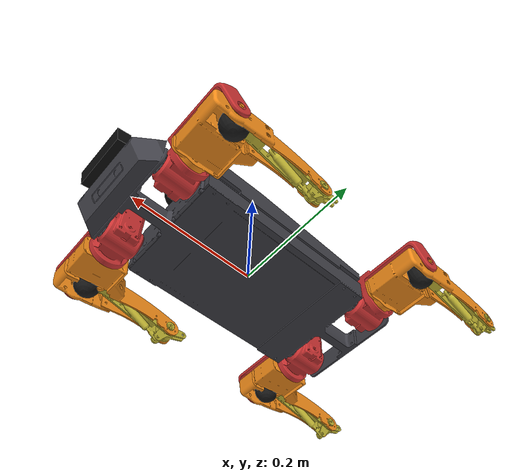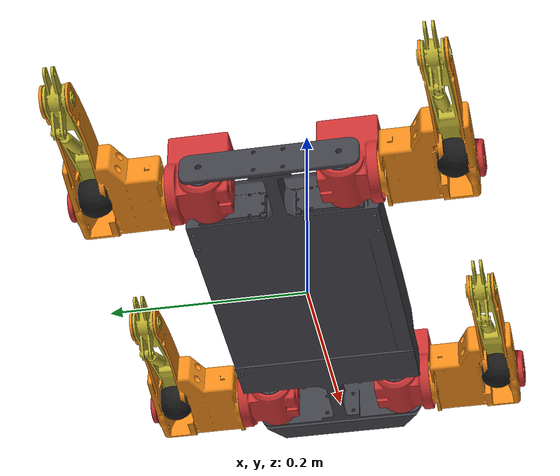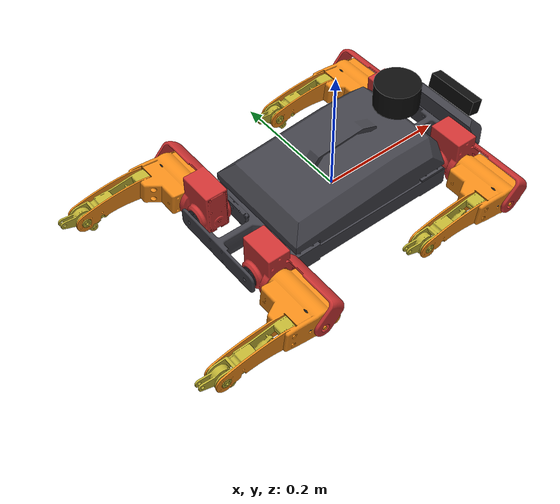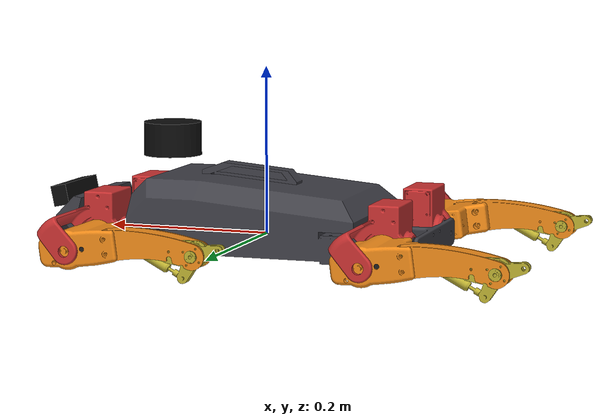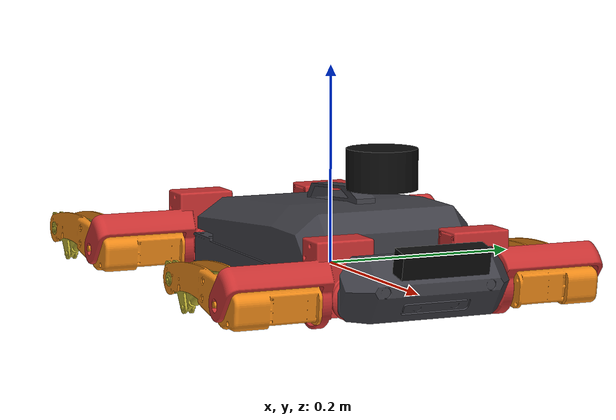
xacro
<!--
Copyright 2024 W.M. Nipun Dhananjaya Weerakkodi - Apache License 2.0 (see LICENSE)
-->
<?xml version="1.0"?>
<robot xmlns:xacro="http://www.ros.org/wiki/xacro" name="hyperdog">

  <xacro:arg name="sim" default="true"/>
  <xacro:arg name="use_lidar" default="true"/>
  <xacro:arg name="use_camera" default="true"/>
  <xacro:arg name="motors_file" default="$(find hyperdog_description)/config/bldc_motors.yaml"/>
  <xacro:arg name="controllers_file" default="$(find hyperdog_description)/config/controllers.yaml"/>
  <xacro:arg name="can_interface" default="can0"/>
  <!-- model variations (robustness testing / payloads) -->
  <xacro:arg name="payload_mass" default="0.0"/>
  <xacro:arg name="payload_x" default="0.0"/>
  <xacro:arg name="payload_y" default="0.0"/>
  <xacro:arg name="foot_mu" default="1.0"/>
  <xacro:arg name="imu_noise_scale" default="1.0"/>
  <!-- optional extra ros2_control parameter file (overrides, e.g. motor variations) -->
  <xacro:arg name="extra_controller_params" default=""/>

  <xacro:property name="motors_file" value="$(arg motors_file)"/>
  <xacro:property name="foot_mu" value="$(arg foot_mu)"/>
  <xacro:property name="imu_noise_scale" value="$(arg imu_noise_scale)"/>
  <xacro:include filename="$(find hyperdog_description)/urdf/common.xacro"/>
  <xacro:include filename="$(find hyperdog_description)/urdf/leg.xacro"/>
  <xacro:include filename="$(find hyperdog_description)/urdf/sensors.xacro"/>
  <xacro:include filename="$(find hyperdog_description)/urdf/ros2_control.xacro"/>

  <!-- ============================== body ============================== -->
  <link name="base_link">
    <visual>
      <geometry><mesh filename="file://$(find hyperdog_description)/meshes/body.stl" scale="0.001 0.001 0.001"/></geometry>
      <material name="body_grey"><color rgba="0.25 0.25 0.28 1"/></material>
    </visual>
    <collision name="base_collision">
      <origin xyz="0.018 0.0 0.033" rpy="0 0 0"/>
      <geometry><box size="0.42 0.18 0.10"/></geometry>
    </collision>
  </link>

  <joint name="inertial_joint" type="fixed">
    <parent link="base_link"/>
    <child link="inertial_link"/>
  </joint>
  <link name="inertial_link">
    <inertial>
      <origin xyz="0.0 0.0 0.01" rpy="0 0 0"/>
      <mass value="${body_mass}"/>
      <inertia ixx="0.0114" ixy="0" ixz="0" iyy="0.0549" iyz="0" izz="0.0610"/>
    </inertial>
  </link>

  <!-- optional payload (point mass) -->
  <xacro:if value="${$(arg payload_mass) > 0.0}">
    <joint name="payload_joint" type="fixed">
      <parent link="base_link"/>
      <child link="payload_link"/>
      <origin xyz="$(arg payload_x) $(arg payload_y) 0.08" rpy="0 0 0"/>
    </joint>
    <link name="payload_link">
      <inertial>
        <mass value="$(arg payload_mass)"/>
        <inertia ixx="0.001" ixy="0" ixz="0" iyy="0.001" iyz="0" izz="0.001"/>
      </inertial>
    </link>
  </xacro:if>

  <!-- ============================== legs ============================== -->
  <xacro:hyperdog_leg prefix="FR" front="1" left="-1"/>
  <xacro:hyperdog_leg prefix="FL" front="1" left="1"/>
  <xacro:hyperdog_leg prefix="BR" front="-1" left="-1"/>
  <xacro:hyperdog_leg prefix="BL" front="-1" left="1"/>

  <!-- ============================= sensors ============================ -->
  <xacro:hyperdog_imu/>
  <xacro:hyperdog_foot_contact prefix="FR"/>
  <xacro:hyperdog_foot_contact prefix="FL"/>
  <xacro:hyperdog_foot_contact prefix="BR"/>
  <xacro:hyperdog_foot_contact prefix="BL"/>
  <xacro:if value="$(arg use_lidar)">
    <xacro:hyperdog_lidar/>
  </xacro:if>
  <xacro:if value="$(arg use_camera)">
    <xacro:hyperdog_rgbd_camera/>
  </xacro:if>
  <xacro:hyperdog_ground_truth/>

  <!-- ========================== ros2_control ========================== -->
  <xacro:hyperdog_ros2_control sim="$(arg sim)" can_interface="$(arg can_interface)"
                               controllers_file="$(arg controllers_file)"
                               motors_file="$(arg motors_file)"
                               extra_params="$(arg extra_controller_params)"/>
</robot>

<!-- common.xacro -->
<robot xmlns:xacro="http://www.ros.org/wiki/xacro">
  <!-- geometry [m] (must match hyperdog_locomotion/config/locomotion.yaml) -->
  <xacro:property name="hip_x" value="0.175"/>
  <xacro:property name="hip_y" value="0.066"/>
  <xacro:property name="abad_length" value="0.104"/>
  <xacro:property name="upper_length" value="0.15"/>
  <xacro:property name="lower_length" value="0.14"/>
  <xacro:property name="foot_radius" value="0.02"/>

  <!-- joint position limits [rad] -->
  <xacro:property name="hip_lower" value="-1.0"/>
  <xacro:property name="hip_upper" value="1.0"/>
  <xacro:property name="uleg_lower" value="-1.2217"/>
  <xacro:property name="uleg_upper" value="3.14"/>
  <xacro:property name="lleg_lower" value="0.45"/>
  <xacro:property name="lleg_upper" value="2.3562"/>

  <!-- masses [kg] -->
  <xacro:property name="body_mass" value="3.0"/>
  <xacro:property name="hip_mass" value="0.3"/>
  <xacro:property name="uleg_mass" value="0.5"/>
  <xacro:property name="lleg_mass" value="0.2"/>
  <xacro:property name="foot_mass" value="0.1"/>

  <!-- foot friction (foot_mu) and IMU noise scale (imu_noise_scale) are xacro args of the top level file -->

  <!-- ===== BLDC actuator limits derived from the motor parameter file ===== -->
  <xacro:property name="bldc" value="${xacro.load_yaml(motors_file)['bldc_controller']['ros__parameters']}"/>

  <xacro:macro name="bldc_limit" params="joint lower upper">
    <xacro:property name="types" value="${bldc['joint_motor_types']}"/>
    <xacro:property name="mtype" value="${types[0] if len(types) == 1 else types[bldc['joints'].index(joint)]}"/>
    <xacro:property name="m" value="${bldc['motors'][mtype]}"/>
    <xacro:property name="kt" value="${m['torque_constant'] if m['torque_constant'] > 0 else 60.0 / (2.0 * pi * m['kv_rpm_per_volt'])}"/>
    <xacro:property name="peak" value="${kt * m['gear_ratio'] * m['gearbox_efficiency'] * m['max_current']}"/>
    <xacro:property name="vmax" value="${m['max_velocity'] if m['max_velocity'] > 0 else m['bus_voltage'] * m['voltage_utilization'] / kt / m['gear_ratio']}"/>
    <limit lower="${lower}" upper="${upper}" effort="${peak}" velocity="${vmax}"/>
  </xacro:macro>
</robot>

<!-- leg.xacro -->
<robot xmlns:xacro="http://www.ros.org/wiki/xacro">
  <!--
    One leg: hip (ab/ad, axis +-x) -> uleg/thigh (axis -y) -> lleg/knee (axis +y) -> foot sphere.
    front: +1 front / -1 back, left: +1 left / -1 right
  -->
  <xacro:macro name="hyperdog_leg" params="prefix front left">
    <xacro:property name="side" value="${'LEFT' if left > 0 else 'RIGHT'}"/>

    <!-- hip -->
    <joint name="${prefix}_hip_joint" type="revolute">
      <origin xyz="${front * hip_x} ${left * hip_y} 0" rpy="0 0 0"/>
      <parent link="base_link"/>
      <child link="${prefix}_hip_link"/>
      <axis xyz="${left} 0 0"/>
      <xacro:bldc_limit joint="${prefix}_hip_joint" lower="${hip_lower}" upper="${hip_upper}"/>
      <dynamics damping="0.0" friction="0.0"/>
    </joint>
    <link name="${prefix}_hip_link">
      <visual>
        <geometry><mesh filename="file://$(find hyperdog_description)/meshes/${side}_HIP.stl" scale="0.001 0.001 0.001"/></geometry>
        <material name="hip_red"><color rgba="0.8 0.2 0.2 1"/></material>
      </visual>
      <inertial>
        <origin xyz="0.0 ${left * 0.02} 0.01" rpy="0 0 0"/>
        <mass value="${hip_mass}"/>
        <inertia ixx="0.000786" ixy="0" ixz="0" iyy="0.000281" iyz="0" izz="0.000714"/>
      </inertial>
    </link>

    <!-- thigh -->
    <joint name="${prefix}_uleg_joint" type="revolute">
      <origin xyz="0 ${left * abad_length} 0" rpy="0 0 0"/>
      <parent link="${prefix}_hip_link"/>
      <child link="${prefix}_uleg_link"/>
      <axis xyz="0 -1 0"/>
      <xacro:bldc_limit joint="${prefix}_uleg_joint" lower="${uleg_lower}" upper="${uleg_upper}"/>
      <dynamics damping="0.0" friction="0.0"/>
    </joint>
    <link name="${prefix}_uleg_link">
      <visual>
        <geometry><mesh filename="file://$(find hyperdog_description)/meshes/${side}_ULEG.stl" scale="0.001 0.001 0.001"/></geometry>
        <material name="uleg_orange"><color rgba="0.95 0.55 0.1 1"/></material>
      </visual>
      <collision name="${prefix}_uleg_collision">
        <origin xyz="${-upper_length / 2} 0 0" rpy="0 0 0"/>
        <geometry><box size="${upper_length} 0.03 0.03"/></geometry>
      </collision>
      <inertial>
        <origin xyz="-0.02 ${-left * 0.02} 0.0" rpy="0 0 0"/>
        <mass value="${uleg_mass}"/>
        <inertia ixx="0.000532" ixy="0" ixz="0" iyy="0.001786" iyz="0" izz="0.002125"/>
      </inertial>
    </link>

    <!-- shank -->
    <joint name="${prefix}_lleg_joint" type="revolute">
      <origin xyz="${-upper_length} 0 0" rpy="0 0 0"/>
      <parent link="${prefix}_uleg_link"/>
      <child link="${prefix}_lleg_link"/>
      <axis xyz="0 1 0"/>
      <xacro:bldc_limit joint="${prefix}_lleg_joint" lower="${lleg_lower}" upper="${lleg_upper}"/>
      <dynamics damping="0.0" friction="0.0"/>
    </joint>
    <link name="${prefix}_lleg_link">
      <visual>
        <geometry><mesh filename="file://$(find hyperdog_description)/meshes/LLEG.stl" scale="0.001 0.001 0.001"/></geometry>
        <material name="lleg_yellow"><color rgba="0.75 0.7 0.2 1"/></material>
      </visual>
      <collision name="${prefix}_lleg_collision">
        <origin xyz="${lower_length / 2 - 0.01} 0 0" rpy="0 0 0"/>
        <geometry><box size="${lower_length - 0.04} 0.02 0.02"/></geometry>
      </collision>
      <inertial>
        <origin xyz="0.05 0 0" rpy="0 0 0"/>
        <mass value="${lleg_mass}"/>
        <inertia ixx="0.0000632" ixy="0" ixz="0" iyy="0.000655" iyz="0" izz="0.000623"/>
      </inertial>
    </link>

    <!-- foot -->
    <joint name="${prefix}_foot_fixed" type="fixed">
      <origin xyz="${lower_length} 0 0" rpy="0 0 0"/>
      <parent link="${prefix}_lleg_link"/>
      <child link="${prefix}_foot"/>
    </joint>
    <link name="${prefix}_foot">
      <visual>
        <geometry><sphere radius="${foot_radius}"/></geometry>
        <material name="foot_black"><color rgba="0.1 0.1 0.1 1"/></material>
      </visual>
      <collision>
        <geometry><sphere radius="${foot_radius}"/></geometry>
      </collision>
      <inertial>
        <mass value="${foot_mass}"/>
        <inertia ixx="0.000016" ixy="0" ixz="0" iyy="0.000016" iyz="0" izz="0.000016"/>
      </inertial>
    </link>

    <gazebo reference="${prefix}_foot_fixed">
      <preserveFixedJoint>true</preserveFixedJoint>
    </gazebo>
    <gazebo reference="${prefix}_foot">
      <mu1>${foot_mu}</mu1>
      <mu2>${foot_mu}</mu2>
      <kp>100000.0</kp>
      <kd>100.0</kd>
      <minDepth>0.0005</minDepth>
    </gazebo>
  </xacro:macro>
</robot>

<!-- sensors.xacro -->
<robot xmlns:xacro="http://www.ros.org/wiki/xacro">

  <!-- ========================= IMU (500 Hz, noisy) ========================= -->
  <xacro:macro name="hyperdog_imu">
    <joint name="imu_joint" type="fixed">
      <parent link="base_link"/>
      <child link="imu_link"/>
      <origin xyz="0 0 0" rpy="0 0 0"/>
    </joint>
    <link name="imu_link">
      <inertial>
        <mass value="0.01"/>
        <inertia ixx="1e-6" ixy="0" ixz="0" iyy="1e-6" iyz="0" izz="1e-6"/>
      </inertial>
    </link>
    <gazebo reference="imu_joint">
      <preserveFixedJoint>true</preserveFixedJoint>
    </gazebo>
    <gazebo reference="imu_link">
      <sensor name="imu" type="imu">
        <always_on>true</always_on>
        <update_rate>500</update_rate>
        <topic>hyperdog/imu</topic>
        <gz_frame_id>imu_link</gz_frame_id>
        <imu>
          <angular_velocity>
            <x><noise type="gaussian"><mean>0</mean><stddev>${0.002 * imu_noise_scale}</stddev></noise></x>
            <y><noise type="gaussian"><mean>0</mean><stddev>${0.002 * imu_noise_scale}</stddev></noise></y>
            <z><noise type="gaussian"><mean>0</mean><stddev>${0.002 * imu_noise_scale}</stddev></noise></z>
          </angular_velocity>
          <linear_acceleration>
            <x><noise type="gaussian"><mean>0</mean><stddev>${0.02 * imu_noise_scale}</stddev></noise></x>
            <y><noise type="gaussian"><mean>0</mean><stddev>${0.02 * imu_noise_scale}</stddev></noise></y>
            <z><noise type="gaussian"><mean>0</mean><stddev>${0.02 * imu_noise_scale}</stddev></noise></z>
          </linear_acceleration>
        </imu>
      </sensor>
    </gazebo>
  </xacro:macro>

  <!-- ========================= foot contact sensors ========================= -->
  <xacro:macro name="hyperdog_foot_contact" params="prefix">
    <gazebo reference="${prefix}_foot">
      <sensor name="${prefix}_foot_contact" type="contact">
        <always_on>true</always_on>
        <update_rate>500</update_rate>
        <topic>hyperdog/foot_contact/${prefix}</topic>
        <contact>
          <collision>${prefix}_foot_collision</collision>
        </contact>
      </sensor>
    </gazebo>
  </xacro:macro>

  <!-- ========================= 3D lidar (16 beams) ========================= -->
  <xacro:macro name="hyperdog_lidar">
    <joint name="lidar_joint" type="fixed">
      <parent link="base_link"/>
      <child link="lidar_link"/>
      <origin xyz="0.12 0 0.11" rpy="0 0 0"/>
    </joint>
    <link name="lidar_link">
      <visual>
        <geometry><cylinder radius="0.035" length="0.04"/></geometry>
        <material name="lidar_black"><color rgba="0.05 0.05 0.05 1"/></material>
      </visual>
      <inertial>
        <mass value="0.05"/>
        <inertia ixx="1e-5" ixy="0" ixz="0" iyy="1e-5" iyz="0" izz="1e-5"/>
      </inertial>
    </link>
    <gazebo reference="lidar_joint">
      <preserveFixedJoint>true</preserveFixedJoint>
    </gazebo>
    <gazebo reference="lidar_link">
      <sensor name="lidar" type="gpu_lidar">
        <always_on>true</always_on>
        <update_rate>10</update_rate>
        <topic>hyperdog/lidar</topic>
        <gz_frame_id>lidar_link</gz_frame_id>
        <lidar>
          <scan>
            <horizontal><samples>900</samples><resolution>1</resolution><min_angle>-3.14159</min_angle><max_angle>3.14159</max_angle></horizontal>
            <vertical><samples>16</samples><resolution>1</resolution><min_angle>-0.2618</min_angle><max_angle>0.2618</max_angle></vertical>
          </scan>
          <range><min>0.1</min><max>30.0</max><resolution>0.01</resolution></range>
          <noise><type>gaussian</type><mean>0</mean><stddev>0.01</stddev></noise>
        </lidar>
      </sensor>
    </gazebo>
  </xacro:macro>

  <!-- ========================= RGB-D camera ========================= -->
  <xacro:macro name="hyperdog_rgbd_camera">
    <joint name="camera_joint" type="fixed">
      <parent link="base_link"/>
      <child link="camera_link"/>
      <origin xyz="0.25 0 0.04" rpy="0 0.2 0"/>
    </joint>
    <link name="camera_link">
      <visual>
        <geometry><box size="0.02 0.09 0.025"/></geometry>
        <material name="camera_black"><color rgba="0.05 0.05 0.05 1"/></material>
      </visual>
      <inertial>
        <mass value="0.03"/>
        <inertia ixx="1e-6" ixy="0" ixz="0" iyy="1e-6" iyz="0" izz="1e-6"/>
      </inertial>
    </link>
    <!-- optical frame (z forward) for image consumers -->
    <joint name="camera_optical_joint" type="fixed">
      <parent link="camera_link"/>
      <child link="camera_optical_frame"/>
      <origin xyz="0 0 0" rpy="${-pi/2} 0 ${-pi/2}"/>
    </joint>
    <link name="camera_optical_frame"/>
    <gazebo reference="camera_joint">
      <preserveFixedJoint>true</preserveFixedJoint>
    </gazebo>
    <gazebo reference="camera_link">
      <sensor name="rgbd_camera" type="rgbd_camera">
        <always_on>true</always_on>
        <update_rate>15</update_rate>
        <topic>hyperdog/camera</topic>
        <gz_frame_id>camera_optical_frame</gz_frame_id>
        <camera>
          <horizontal_fov>1.2</horizontal_fov>
          <image><width>640</width><height>480</height><format>R8G8B8</format></image>
          <clip><near>0.1</near><far>10.0</far></clip>
          <depth_camera><clip><near>0.1</near><far>10.0</far></clip></depth_camera>
          <noise><type>gaussian</type><mean>0</mean><stddev>0.005</stddev></noise>
        </camera>
      </sensor>
    </gazebo>
  </xacro:macro>

  <!-- ===== ground truth odometry (simulation only, used for validation) ===== -->
  <xacro:macro name="hyperdog_ground_truth">
    <gazebo>
      <plugin filename="gz-sim-odometry-publisher-system" name="gz::sim::systems::OdometryPublisher">
        <odom_frame>world</odom_frame>
        <robot_base_frame>base_link</robot_base_frame>
        <odom_publish_frequency>100</odom_publish_frequency>
        <odom_topic>hyperdog/ground_truth</odom_topic>
        <tf_topic>hyperdog/ground_truth_tf</tf_topic>
        <dimensions>3</dimensions>
      </plugin>
    </gazebo>
  </xacro:macro>
</robot>
